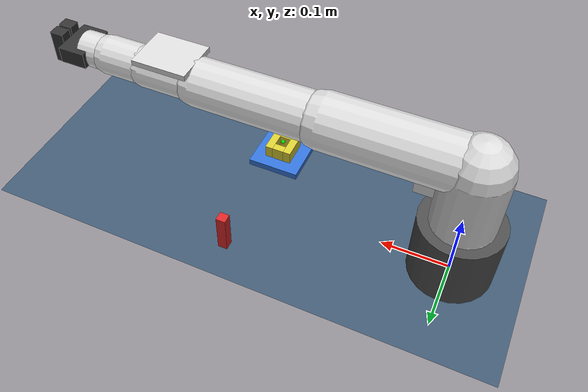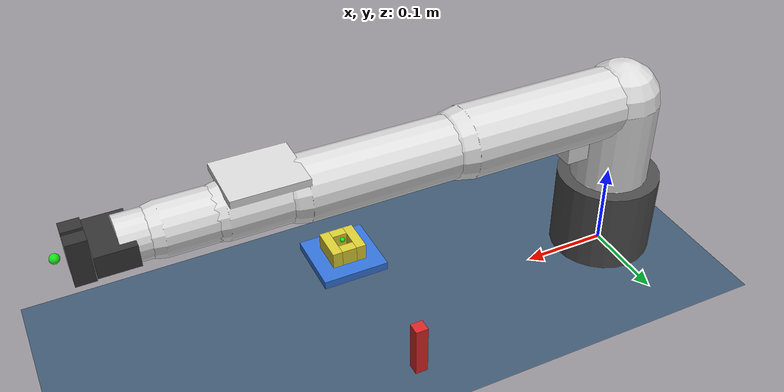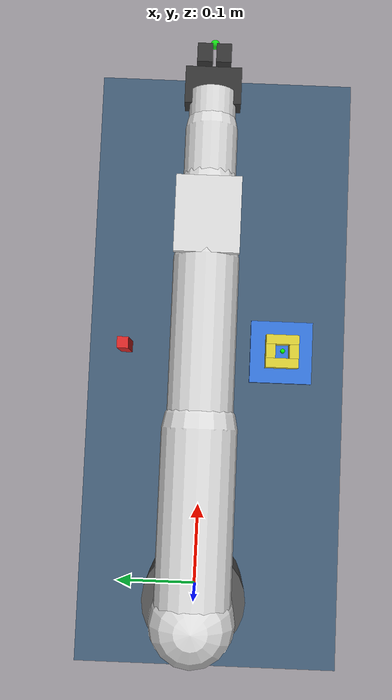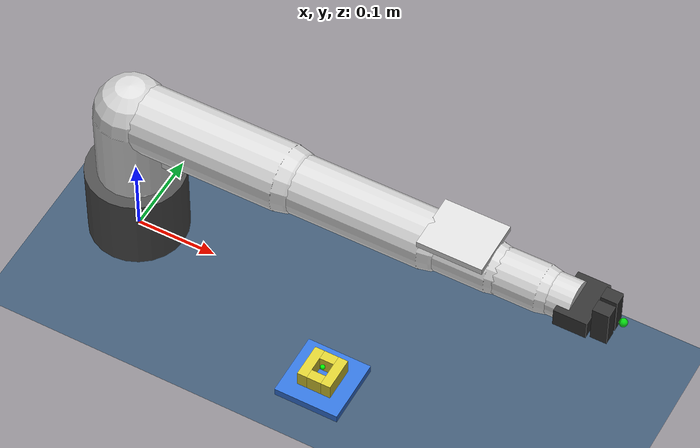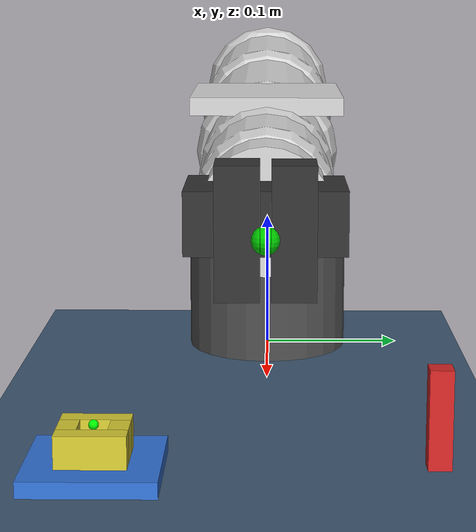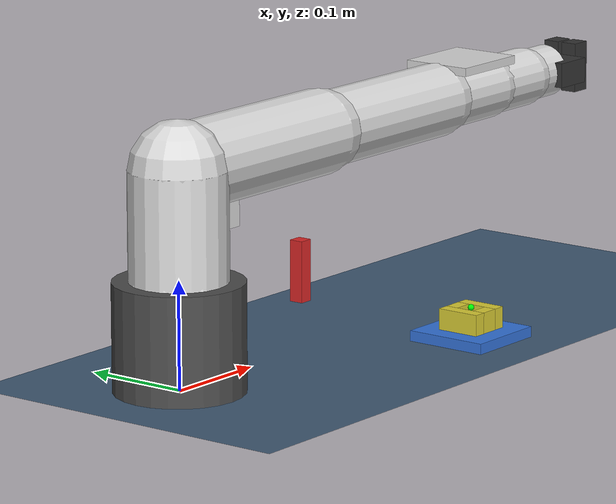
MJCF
<mujoco model="easytrainer_tutorial_peg">
  <compiler angle="radian" autolimits="true"/>

  <option timestep="0.002" iterations="50" solver="Newton" tolerance="1e-8" gravity="0 0 -9.81"/>

  <visual>
    <headlight diffuse="0.6 0.6 0.6" ambient="0.3 0.3 0.3" specular="0 0 0"/>
    <rgba haze="0.15 0.25 0.35 1"/>
    <global azimuth="135" elevation="-25"/>
  </visual>

  <default>
    <default class="arm_link">
      <geom type="capsule" rgba="0.85 0.85 0.85 1" mass="0.5"
            contype="8" conaffinity="3" friction="1.0 0.005 0.001"/>
      <joint type="hinge" damping="2.0" armature="0.05" frictionloss="0.05"/>
    </default>
    <default class="arm_visual">
      <geom rgba="0.85 0.85 0.85 1" mass="0.0" contype="0" conaffinity="0"/>
    </default>
    <default class="gripper_finger">
      <!-- 그리퍼-peg 마찰 강화: 잡은 peg 가 이동/대기 중 미끄러지지 않도록 sliding/
           torsional/rolling 마찰을 크게(2.0→6.0). MuJoCo 접촉 마찰은 두 geom 의
           원소별 최대값이라 peg_geom 도 함께 키운다. -->
      <geom type="box" size="0.010 0.008 0.024" rgba="0.2 0.2 0.2 1" mass="0.03"
            contype="4" conaffinity="3" friction="4.0 0.3 0.03" condim="6"/>
    </default>
    <default class="hole_wall">
      <geom type="box" rgba="0.85 0.80 0.20 1" mass="0.05"
            contype="16" conaffinity="15" friction="1.0 0.005 0.001"/>
    </default>
  </default>

  <asset>
    <texture type="skybox" builtin="gradient" rgb1="0.5 0.7 0.9" rgb2="0.1 0.2 0.4" width="512" height="512"/>
    <texture name="floor_tex" type="2d" builtin="checker" rgb1="0.2 0.3 0.4" rgb2="0.3 0.4 0.5" width="300" height="300"/>
    <material name="floor_mat" texture="floor_tex" texrepeat="2 2" reflectance="0.1"/>
    <material name="peg_mat" rgba="0.85 0.15 0.15 1"/>
    <material name="marker_mat" rgba="0.95 0.55 0.10 1"/>
    <material name="hole_base_mat" rgba="0.20 0.45 0.85 1" reflectance="0.05"/>
    <material name="hole_wall_mat" rgba="0.85 0.80 0.20 1"/>
  </asset>

  <worldbody>
    <light name="top_light" pos="0 0 2.0" dir="0 0 -1" diffuse="0.6 0.6 0.6" specular="0.1 0.1 0.1"/>
    <light name="side_light" pos="0.8 0.8 1.5" dir="-0.5 -0.5 -1" diffuse="0.3 0.3 0.3"/>

    <geom name="floor" type="plane" size="3 3 0.1" material="floor_mat"
          contype="1" conaffinity="14" friction="1.0 0.005 0.001"/>

    <!-- Robot arm: 6DOF chain on a small pedestal — identical to scene.xml -->
    <body name="base" pos="0 0 0.05">
      <geom type="cylinder" size="0.06 0.05" rgba="0.3 0.3 0.3 1" mass="2.0"
            contype="0" conaffinity="0"/>

      <body name="link1" pos="0 0 0.05" gravcomp="1">
        <joint name="joint1" class="arm_link" axis="0 0 1" range="-3.14 3.14"/>
        <geom class="arm_link" fromto="0 0 0  0 0 0.10" size="0.045"/>
        <geom class="arm_visual" type="box" size="0.025 0.012 0.012" pos="0.045 0 0.05"
              material="marker_mat"/>

        <body name="link2" pos="0 0 0.10" gravcomp="1">
          <joint name="joint2" class="arm_link" axis="0 -1 0" range="-1.57 1.57"/>
          <geom class="arm_link" fromto="0 0 0  0.20 0 0" size="0.04"/>

          <body name="link3" pos="0.20 0 0" gravcomp="1">
            <joint name="joint3" class="arm_link" axis="0 -1 0" range="-2.40 0.50"/>
            <geom class="arm_link" fromto="0 0 0  0.18 0 0" size="0.035"/>

            <body name="link4" pos="0.18 0 0" gravcomp="1">
              <joint name="joint4" class="arm_link" axis="1 0 0" range="-3.14 3.14"/>
              <geom class="arm_link" fromto="0 0 0  0.08 0 0" size="0.030"/>
              <geom class="arm_visual" type="box" size="0.040 0.034 0.004" pos="0.040 0 0.030"
                    material="marker_mat"/>

              <body name="link5" pos="0.08 0 0" gravcomp="1">
                <joint name="joint5" class="arm_link" axis="0 -1 0" range="-1.40 1.40"/>
                <geom class="arm_link" fromto="0 0 0  0.06 0 0" size="0.028"/>

                <body name="link6" pos="0.06 0 0" gravcomp="1">
                  <joint name="joint6" class="arm_link" axis="1 0 0" range="-3.14 3.14"/>
                  <geom class="arm_visual" type="cylinder" size="0.025 0.020"
                        pos="0.020 0 0" euler="0 1.5708 0" mass="0.2"/>

                  <body name="gripper_base" pos="0.045 0 0" gravcomp="1">
                    <geom type="box" size="0.020 0.030 0.012" rgba="0.2 0.2 0.2 1" mass="0.1"
                          contype="0" conaffinity="0"/>
                    <site name="ee_site" pos="0.05 0 0" size="0.005" rgba="0 1 0 0.8"/>

                    <camera name="wrist_cam" pos="-0.025 0 0.045"
                            xyaxes="0 -1 0  0.5 0 0.866" fovy="65"/>
                    <camera name="wrist_cam_down" pos="0.045 0.07 0.04"
                            xyaxes="-1 -0.07 0  0.05 -0.706 0.709" fovy="60"/>

                    <body name="finger_left" pos="0.030 0.010 0" gravcomp="1">
                      <joint name="gripper" type="slide" axis="0 1 0" range="0 0.04"
                             damping="50" frictionloss="0.05"/>
                      <geom class="gripper_finger"/>
                    </body>
                    <body name="finger_right" pos="0.030 -0.010 0" gravcomp="1">
                      <joint name="gripper_mirror" type="slide" axis="0 -1 0" range="0 0.04"
                             damping="50" frictionloss="0.05"/>
                      <geom class="gripper_finger"/>
                    </body>
                  </body>
                </body>
              </body>
            </body>
          </body>
        </body>
      </body>
    </body>

    <!-- ============== Peg-in-Hole task objects ====================== -->
    <!-- peg: 14×14 mm cross-section, 60 mm tall. Half-sizes in MJCF. -->
    <body name="peg" pos="0.30 0.10 0.035">
      <freejoint name="peg_free"/>
      <geom name="peg_geom" type="box" size="0.007 0.007 0.030" material="peg_mat"
            contype="2" conaffinity="13" friction="3.0 0.3 0.03" condim="6" mass="0.005"/>
    </body>

    <body name="hole_base" pos="0.30 -0.10 0.005">
      <freejoint name="hole_base_free"/>
      <!-- Flat base plate: 80×80×10 mm, top at z = +0.005 in body frame -->
      <geom name="hole_plate" type="box" size="0.040 0.040 0.005"
            pos="0 0 0" material="hole_base_mat" mass="0.30"
            contype="16" conaffinity="15" friction="1.0 0.005 0.001"/>
      <!-- 4 walls forming a 18×18 mm square opening, 20 mm tall.
           wall thickness 12 mm, outer footprint 42×42 mm, sits on top of plate. -->
      <geom class="hole_wall" name="wall_xp" pos=" 0.015 0 0.015" size="0.006 0.021 0.010"
            material="hole_wall_mat"/>
      <geom class="hole_wall" name="wall_xn" pos="-0.015 0 0.015" size="0.006 0.021 0.010"
            material="hole_wall_mat"/>
      <geom class="hole_wall" name="wall_yp" pos="0  0.015 0.015" size="0.009 0.006 0.010"
            material="hole_wall_mat"/>
      <geom class="hole_wall" name="wall_yn" pos="0 -0.015 0.015" size="0.009 0.006 0.010"
            material="hole_wall_mat"/>
      <!-- Marker site at hole opening center (top of plate). Useful for cameras
           and for the success check (we just look at peg-pos relative to this
           body's frame). -->
      <site name="hole_center" pos="0 0 0.025" size="0.003" rgba="0 1 0 0.9"/>
    </body>

    <camera name="top_cam"   pos="0.30  0.00 0.40" fovy="45"/>
    <camera name="front_cam" pos="0.55 -0.05 0.20" mode="targetbody" target="hole_base" fovy="42"/>
  </worldbody>

  <equality>
    <joint joint1="gripper" joint2="gripper_mirror" polycoef="0 1 0 0 0"/>
  </equality>

  <actuator>
    <position name="act_joint1" joint="joint1" kp="80"  kv="6"  ctrlrange="-3.14 3.14"/>
    <position name="act_joint2" joint="joint2" kp="120" kv="10" ctrlrange="-1.57 1.57"/>
    <position name="act_joint3" joint="joint3" kp="100" kv="8"  ctrlrange="-2.40 0.50"/>
    <position name="act_joint4" joint="joint4" kp="60"  kv="5"  ctrlrange="-3.14 3.14"/>
    <position name="act_joint5" joint="joint5" kp="50"  kv="4"  ctrlrange="-1.40 1.40"/>
    <position name="act_joint6" joint="joint6" kp="40"  kv="3"  ctrlrange="-3.14 3.14"/>
    <position name="act_gripper" joint="gripper" kp="400" kv="30" ctrlrange="0 0.04"/>
  </actuator>

  <keyframe>
    <key name="home"
         qpos="0 1.35 -1.55 0 -1.30 0   0 0
               0.30  0.10 0.035 1 0 0 0
               0.30 -0.10 0.005 1 0 0 0"
         ctrl="0 1.35 -1.55 0 -1.30 0   0"/>
  </keyframe>
</mujoco>
